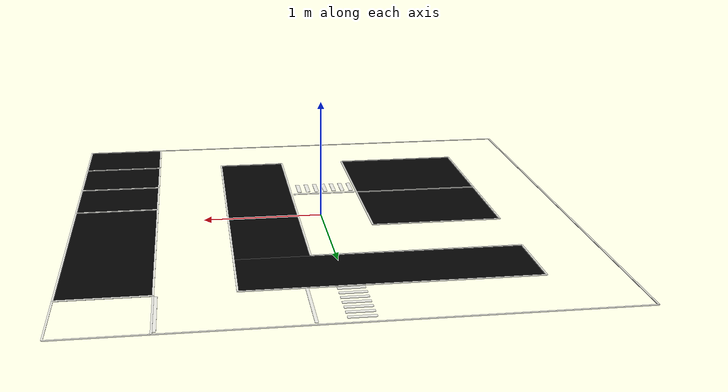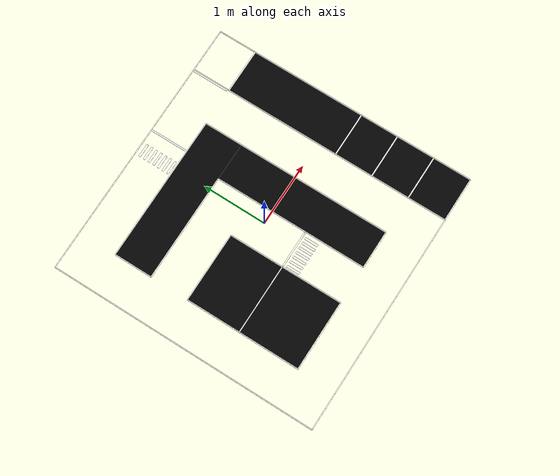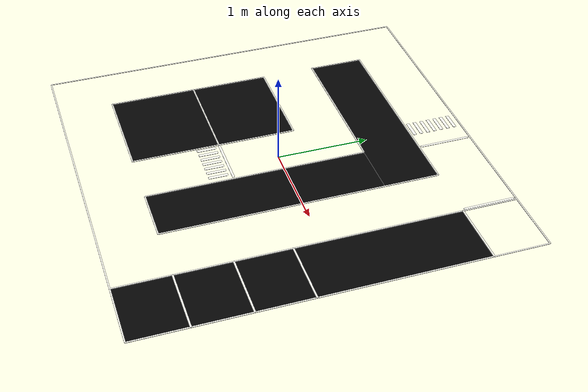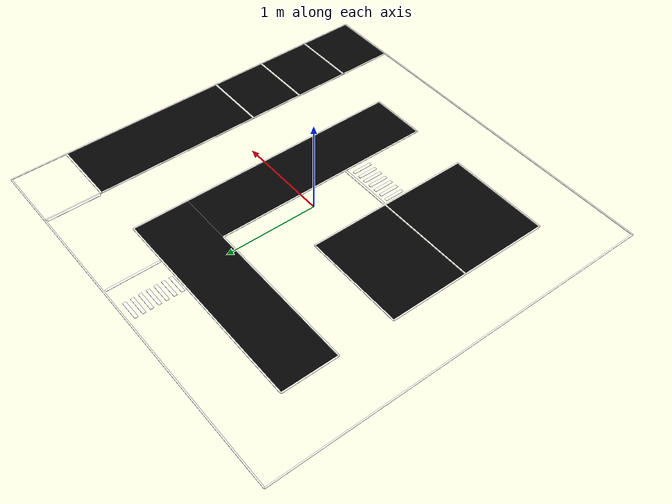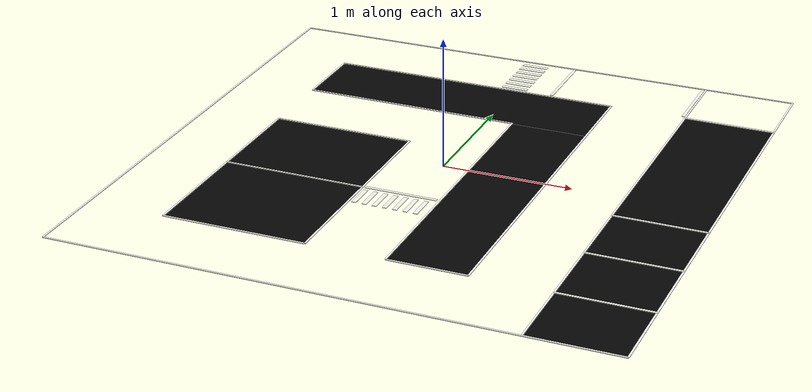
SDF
<sdf version="1.6">
 <world name="smart_community">
  <model name="painted_boundaries">
   <static>true</static>
   <link name="body">
    <visual name="island_0">
     <pose>-0.35 1.2 0.001 0 0 0</pose>
     <geometry><box><size>2.3 0.6 0.001</size></box></geometry>
     <material><ambient>0.015 0.015 0.015 1</ambient><diffuse>0.015 0.015 0.015 1</diffuse></material>
    </visual>
    <visual name="island_1">
     <pose>0.5 -0.3 0.001 0 0 0</pose>
     <geometry><box><size>0.6 2.4 0.001</size></box></geometry>
     <material><ambient>0.015 0.015 0.015 1</ambient><diffuse>0.015 0.015 0.015 1</diffuse></material>
    </visual>
    <visual name="island_2">
     <pose>-0.95 -0.6 0.001 0 0 0</pose>
     <geometry><box><size>1.1 1.8 0.001</size></box></geometry>
     <material><ambient>0.015 0.015 0.015 1</ambient><diffuse>0.015 0.015 0.015 1</diffuse></material>
    </visual>
    <visual name="island_3">
     <pose>1.75 -0.3 0.001 0 0 0</pose>
     <geometry><box><size>0.7 3.6 0.001</size></box></geometry>
     <material><ambient>0.015 0.015 0.015 1</ambient><diffuse>0.015 0.015 0.015 1</diffuse></material>
    </visual>
    <visual name="edge_0">
     <pose>0 -2.1 0.005 0 0 0</pose>
     <geometry><box><size>4.2 0.014 0.005</size></box></geometry>
     <material><ambient>0.96 0.96 0.93 1</ambient><diffuse>0.96 0.96 0.93 1</diffuse></material>
    </visual>
    <visual name="edge_1">
     <pose>2.1 0 0.005 0 0 1.5708</pose>
     <geometry><box><size>4.2 0.014 0.005</size></box></geometry>
     <material><ambient>0.96 0.96 0.93 1</ambient><diffuse>0.96 0.96 0.93 1</diffuse></material>
    </visual>
    <visual name="edge_2">
     <pose>0 2.1 0.005 0 0 3.14159</pose>
     <geometry><box><size>4.2 0.014 0.005</size></box></geometry>
     <material><ambient>0.96 0.96 0.93 1</ambient><diffuse>0.96 0.96 0.93 1</diffuse></material>
    </visual>
    <visual name="edge_3">
     <pose>-2.1 0 0.005 0 0 -1.5708</pose>
     <geometry><box><size>4.2 0.014 0.005</size></box></geometry>
     <material><ambient>0.96 0.96 0.93 1</ambient><diffuse>0.96 0.96 0.93 1</diffuse></material>
    </visual>
    <visual name="edge_4">
     <pose>-0.35 1.5 0.005 0 0 0</pose>
     <geometry><box><size>2.3 0.014 0.005</size></box></geometry>
     <material><ambient>0.96 0.96 0.93 1</ambient><diffuse>0.96 0.96 0.93 1</diffuse></material>
    </visual>
    <visual name="edge_5">
     <pose>-0.65 0.9 0.005 0 0 0</pose>
     <geometry><box><size>1.7 0.014 0.005</size></box></geometry>
     <material><ambient>0.96 0.96 0.93 1</ambient><diffuse>0.96 0.96 0.93 1</diffuse></material>
    </visual>
    <visual name="edge_6">
     <pose>-1.5 1.2 0.005 0 0 1.5708</pose>
     <geometry><box><size>0.6 0.014 0.005</size></box></geometry>
     <material><ambient>0.96 0.96 0.93 1</ambient><diffuse>0.96 0.96 0.93 1</diffuse></material>
    </visual>
    <visual name="edge_7">
     <pose>0.8 0 0.005 0 0 1.5708</pose>
     <geometry><box><size>3 0.014 0.005</size></box></geometry>
     <material><ambient>0.96 0.96 0.93 1</ambient><diffuse>0.96 0.96 0.93 1</diffuse></material>
    </visual>
    <visual name="edge_8">
     <pose>0.2 -0.3 0.005 0 0 1.5708</pose>
     <geometry><box><size>2.4 0.014 0.005</size></box></geometry>
     <material><ambient>0.96 0.96 0.93 1</ambient><diffuse>0.96 0.96 0.93 1</diffuse></material>
    </visual>
    <visual name="edge_9">
     <pose>0.5 -1.5 0.005 0 0 0</pose>
     <geometry><box><size>0.6 0.014 0.005</size></box></geometry>
     <material><ambient>0.96 0.96 0.93 1</ambient><diffuse>0.96 0.96 0.93 1</diffuse></material>
    </visual>
    <visual name="edge_10">
     <pose>-0.95 -1.5 0.005 0 0 0</pose>
     <geometry><box><size>1.1 0.014 0.005</size></box></geometry>
     <material><ambient>0.96 0.96 0.93 1</ambient><diffuse>0.96 0.96 0.93 1</diffuse></material>
    </visual>
    <visual name="edge_11">
     <pose>-0.95 0.3 0.005 0 0 0</pose>
     <geometry><box><size>1.1 0.014 0.005</size></box></geometry>
     <material><ambient>0.96 0.96 0.93 1</ambient><diffuse>0.96 0.96 0.93 1</diffuse></material>
    </visual>
    <visual name="edge_12">
     <pose>-1.5 -0.6 0.005 0 0 1.5708</pose>
     <geometry><box><size>1.8 0.014 0.005</size></box></geometry>
     <material><ambient>0.96 0.96 0.93 1</ambient><diffuse>0.96 0.96 0.93 1</diffuse></material>
    </visual>
    <visual name="edge_13">
     <pose>-0.4 -0.6 0.005 0 0 1.5708</pose>
     <geometry><box><size>1.8 0.014 0.005</size></box></geometry>
     <material><ambient>0.96 0.96 0.93 1</ambient><diffuse>0.96 0.96 0.93 1</diffuse></material>
    </visual>
    <visual name="edge_14">
     <pose>1.4 0 0.005 0 0 1.5708</pose>
     <geometry><box><size>4.2 0.014 0.005</size></box></geometry>
     <material><ambient>0.96 0.96 0.93 1</ambient><diffuse>0.96 0.96 0.93 1</diffuse></material>
    </visual>
    <visual name="edge_15">
     <pose>-0.95 -0.55 0.005 0 0 0</pose>
     <geometry><box><size>1.1 0.014 0.005</size></box></geometry>
     <material><ambient>0.96 0.96 0.93 1</ambient><diffuse>0.96 0.96 0.93 1</diffuse></material>
    </visual>
    <visual name="north_zebra_0">
     <pose>-0.02 1.545 0.008 0 0 0</pose>
     <geometry><box><size>0.21 0.035 0.004</size></box></geometry>
     <material><ambient>0.96 0.96 0.93 1</ambient><diffuse>0.96 0.96 0.93 1</diffuse></material>
    </visual>
    <visual name="south_zebra_0">
     <pose>-0.355 -0.7 0.008 0 0 0</pose>
     <geometry><box><size>0.035 0.21 0.004</size></box></geometry>
     <material><ambient>0.96 0.96 0.93 1</ambient><diffuse>0.96 0.96 0.93 1</diffuse></material>
    </visual>
    <visual name="north_zebra_1">
     <pose>-0.02 1.624 0.008 0 0 0</pose>
     <geometry><box><size>0.21 0.035 0.004</size></box></geometry>
     <material><ambient>0.96 0.96 0.93 1</ambient><diffuse>0.96 0.96 0.93 1</diffuse></material>
    </visual>
    <visual name="south_zebra_1">
     <pose>-0.276 -0.7 0.008 0 0 0</pose>
     <geometry><box><size>0.035 0.21 0.004</size></box></geometry>
     <material><ambient>0.96 0.96 0.93 1</ambient><diffuse>0.96 0.96 0.93 1</diffuse></material>
    </visual>
    <visual name="north_zebra_2">
     <pose>-0.02 1.703 0.008 0 0 0</pose>
     <geometry><box><size>0.21 0.035 0.004</size></box></geometry>
     <material><ambient>0.96 0.96 0.93 1</ambient><diffuse>0.96 0.96 0.93 1</diffuse></material>
    </visual>
    <visual name="south_zebra_2">
     <pose>-0.197 -0.7 0.008 0 0 0</pose>
     <geometry><box><size>0.035 0.21 0.004</size></box></geometry>
     <material><ambient>0.96 0.96 0.93 1</ambient><diffuse>0.96 0.96 0.93 1</diffuse></material>
    </visual>
    <visual name="north_zebra_3">
     <pose>-0.02 1.782 0.008 0 0 0</pose>
     <geometry><box><size>0.21 0.035 0.004</size></box></geometry>
     <material><ambient>0.96 0.96 0.93 1</ambient><diffuse>0.96 0.96 0.93 1</diffuse></material>
    </visual>
    <visual name="south_zebra_3">
     <pose>-0.118 -0.7 0.008 0 0 0</pose>
     <geometry><box><size>0.035 0.21 0.004</size></box></geometry>
     <material><ambient>0.96 0.96 0.93 1</ambient><diffuse>0.96 0.96 0.93 1</diffuse></material>
    </visual>
    <visual name="north_zebra_4">
     <pose>-0.02 1.861 0.008 0 0 0</pose>
     <geometry><box><size>0.21 0.035 0.004</size></box></geometry>
     <material><ambient>0.96 0.96 0.93 1</ambient><diffuse>0.96 0.96 0.93 1</diffuse></material>
    </visual>
    <visual name="south_zebra_4">
     <pose>-0.039 -0.7 0.008 0 0 0</pose>
     <geometry><box><size>0.035 0.21 0.004</size></box></geometry>
     <material><ambient>0.96 0.96 0.93 1</ambient><diffuse>0.96 0.96 0.93 1</diffuse></material>
    </visual>
    <visual name="north_zebra_5">
     <pose>-0.02 1.94 0.008 0 0 0</pose>
     <geometry><box><size>0.21 0.035 0.004</size></box></geometry>
     <material><ambient>0.96 0.96 0.93 1</ambient><diffuse>0.96 0.96 0.93 1</diffuse></material>
    </visual>
    <visual name="south_zebra_5">
     <pose>0.04 -0.7 0.008 0 0 0</pose>
     <geometry><box><size>0.035 0.21 0.004</size></box></geometry>
     <material><ambient>0.96 0.96 0.93 1</ambient><diffuse>0.96 0.96 0.93 1</diffuse></material>
    </visual>
    <visual name="north_zebra_6">
     <pose>-0.02 2.019 0.008 0 0 0</pose>
     <geometry><box><size>0.21 0.035 0.004</size></box></geometry>
     <material><ambient>0.96 0.96 0.93 1</ambient><diffuse>0.96 0.96 0.93 1</diffuse></material>
    </visual>
    <visual name="south_zebra_6">
     <pose>0.119 -0.7 0.008 0 0 0</pose>
     <geometry><box><size>0.035 0.21 0.004</size></box></geometry>
     <material><ambient>0.96 0.96 0.93 1</ambient><diffuse>0.96 0.96 0.93 1</diffuse></material>
    </visual>
    <visual name="north_stop">
     <pose>0.3 1.8 0.008 0 0 0</pose>
     <geometry><box><size>0.025 0.56 0.004</size></box></geometry>
     <material><ambient>0.96 0.96 0.93 1</ambient><diffuse>0.96 0.96 0.93 1</diffuse></material>
    </visual>
    <visual name="south_stop">
     <pose>-0.1 -0.55 0.008 0 0 0</pose>
     <geometry><box><size>0.56 0.025 0.004</size></box></geometry>
     <material><ambient>0.96 0.96 0.93 1</ambient><diffuse>0.96 0.96 0.93 1</diffuse></material>
    </visual>
    <visual name="start_line">
     <pose>1.38 1.8 0.008 0 0 0</pose>
     <geometry><box><size>0.025 0.56 0.004</size></box></geometry>
     <material><ambient>0.96 0.96 0.93 1</ambient><diffuse>0.96 0.96 0.93 1</diffuse></material>
    </visual>
    <visual name="bay_line_0">
     <pose>1.75 -1.5 0.007 0 0 0</pose>
     <geometry><box><size>0.7 0.018 0.004</size></box></geometry>
     <material><ambient>0.96 0.96 0.93 1</ambient><diffuse>0.96 0.96 0.93 1</diffuse></material>
    </visual>
    <visual name="bay_line_1">
     <pose>1.75 -0.9 0.007 0 0 0</pose>
     <geometry><box><size>0.7 0.018 0.004</size></box></geometry>
     <material><ambient>0.96 0.96 0.93 1</ambient><diffuse>0.96 0.96 0.93 1</diffuse></material>
    </visual>
    <visual name="bay_line_2">
     <pose>1.75 -0.3 0.007 0 0 0</pose>
     <geometry><box><size>0.7 0.018 0.004</size></box></geometry>
     <material><ambient>0.96 0.96 0.93 1</ambient><diffuse>0.96 0.96 0.93 1</diffuse></material>
    </visual>
    <visual name="bay_line_3">
     <pose>1.75 1.5 0.007 0 0 0</pose>
     <geometry><box><size>0.7 0.018 0.004</size></box></geometry>
     <material><ambient>0.96 0.96 0.93 1</ambient><diffuse>0.96 0.96 0.93 1</diffuse></material>
    </visual>
   </link>
  </model>
 </world>
</sdf>
